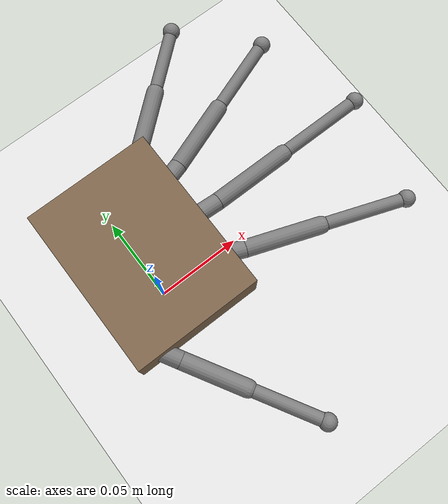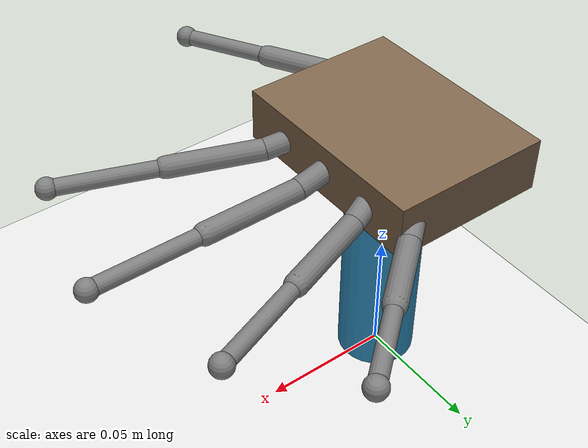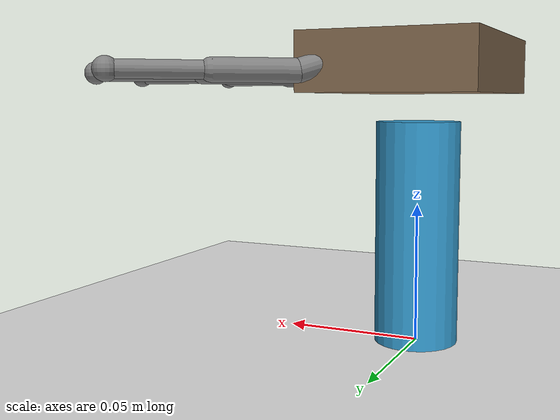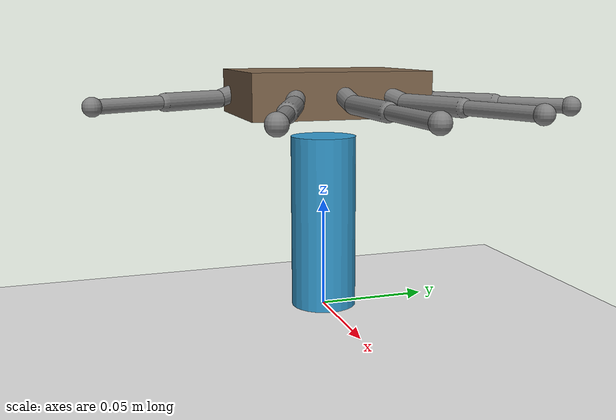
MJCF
<mujoco model="spider_hand_powergrasp_v2">
  <compiler angle="degree"/>
  <option timestep="0.002" gravity="0 0 -9.81" integrator="RK4"/>
  <default>
    <joint damping="1.0" armature="0.05"/>
    <geom friction="1.2 0.005 0.0001" condim="3"/>
  </default>
  <worldbody>
    <light diffuse="0.5 0.5 0.5" pos="0 0 3" dir="0 0 -1"/>
    <geom name="floor" type="plane" size="1 1 0.1" rgba="0.9 0.9 0.9 1"/>

    <body name="cylinder" pos="0 0 0.04">
      <freejoint name="cylinder_root"/>
      <geom name="cylinder_geom" type="cylinder" size="0.015 0.04" mass="0.5" rgba="0.2 0.6 0.8 1"/>
    </body>

    <body name="palm" pos="0 0 0.10">
      <geom name="palm_geom" type="box" size="0.03 0.04 0.01" rgba="0.5 0.4 0.3 1"/>

      <body name="thumb" pos="-0.02 -0.035 0" euler="0 0 -60">
        <joint name="thumb_coxa" type="hinge" axis="0 0 1" range="-30 30"/>
        <geom type="capsule" size="0.004" fromto="0 0 0 0.012 0 -0.003"/>
        <body name="thumb_femur" pos="0.012 0 -0.003">
          <joint name="thumb_femur" type="hinge" axis="0 1 0" range="0 120"/>
          <geom type="capsule" size="0.004" fromto="0 0 0 0.03 0 0"/>
          <body name="thumb_tibia" pos="0.03 0 0">
            <joint name="thumb_tibia" type="hinge" axis="0 1 0" range="0 150"/>
            <geom type="capsule" size="0.003" fromto="0 0 0 0.035 0 0"/>
            <site name="thumb_tip" pos="0.035 0 0" size="0.004" type="sphere"/>
          </body>
        </body>
      </body>

      <body name="index" pos="0.025 -0.02 0" euler="0 0 -20">
        <joint name="index_coxa" type="hinge" axis="0 0 1" range="-30 30"/>
        <geom type="capsule" size="0.004" fromto="0 0 0 0.012 0 -0.003"/>
        <body name="index_femur" pos="0.012 0 -0.003">
          <joint name="index_femur" type="hinge" axis="0 1 0" range="0 120"/>
          <geom type="capsule" size="0.004" fromto="0 0 0 0.035 0 0"/>
          <body name="index_tibia" pos="0.035 0 0">
            <joint name="index_tibia" type="hinge" axis="0 1 0" range="0 150"/>
            <geom type="capsule" size="0.003" fromto="0 0 0 0.04 0 0"/>
            <site name="index_tip" pos="0.04 0 0" size="0.004" type="sphere"/>
          </body>
        </body>
      </body>

      <body name="middle" pos="0.028 0 0" euler="0 0 0">
        <joint name="middle_coxa" type="hinge" axis="0 0 1" range="-30 30"/>
        <geom type="capsule" size="0.004" fromto="0 0 0 0.012 0 -0.003"/>
        <body name="middle_femur" pos="0.012 0 -0.003">
          <joint name="middle_femur" type="hinge" axis="0 1 0" range="0 120"/>
          <geom type="capsule" size="0.004" fromto="0 0 0 0.037 0 0"/>
          <body name="middle_tibia" pos="0.037 0 0">
            <joint name="middle_tibia" type="hinge" axis="0 1 0" range="0 150"/>
            <geom type="capsule" size="0.003" fromto="0 0 0 0.042 0 0"/>
            <site name="middle_tip" pos="0.042 0 0" size="0.004" type="sphere"/>
          </body>
        </body>
      </body>

      <body name="ring" pos="0.025 0.02 0" euler="0 0 20">
        <joint name="ring_coxa" type="hinge" axis="0 0 1" range="-30 30"/>
        <geom type="capsule" size="0.004" fromto="0 0 0 0.012 0 -0.003"/>
        <body name="ring_femur" pos="0.012 0 -0.003">
          <joint name="ring_femur" type="hinge" axis="0 1 0" range="0 120"/>
          <geom type="capsule" size="0.004" fromto="0 0 0 0.033 0 0"/>
          <body name="ring_tibia" pos="0.033 0 0">
            <joint name="ring_tibia" type="hinge" axis="0 1 0" range="0 150"/>
            <geom type="capsule" size="0.003" fromto="0 0 0 0.038 0 0"/>
            <site name="ring_tip" pos="0.038 0 0" size="0.004" type="sphere"/>
          </body>
        </body>
      </body>

      <body name="pinky" pos="0.02 0.035 0" euler="0 0 40">
        <joint name="pinky_coxa" type="hinge" axis="0 0 1" range="-30 30"/>
        <geom type="capsule" size="0.004" fromto="0 0 0 0.01 0 -0.003"/>
        <body name="pinky_femur" pos="0.01 0 -0.003">
          <joint name="pinky_femur" type="hinge" axis="0 1 0" range="0 120"/>
          <geom type="capsule" size="0.004" fromto="0 0 0 0.028 0 0"/>
          <body name="pinky_tibia" pos="0.028 0 0">
            <joint name="pinky_tibia" type="hinge" axis="0 1 0" range="0 150"/>
            <geom type="capsule" size="0.003" fromto="0 0 0 0.032 0 0"/>
            <site name="pinky_tip" pos="0.032 0 0" size="0.004" type="sphere"/>
          </body>
        </body>
      </body>
    </body>
  </worldbody>
  <actuator>
    <position name="thumb_coxa_act" joint="thumb_coxa" kp="30" kv="3"/>
    <position name="thumb_femur_act" joint="thumb_femur" kp="50" kv="5"/>
    <position name="thumb_tibia_act" joint="thumb_tibia" kp="80" kv="8"/>
    <position name="index_coxa_act" joint="index_coxa" kp="30" kv="3"/>
    <position name="index_femur_act" joint="index_femur" kp="50" kv="5"/>
    <position name="index_tibia_act" joint="index_tibia" kp="80" kv="8"/>
    <position name="middle_coxa_act" joint="middle_coxa" kp="30" kv="3"/>
    <position name="middle_femur_act" joint="middle_femur" kp="50" kv="5"/>
    <position name="middle_tibia_act" joint="middle_tibia" kp="80" kv="8"/>
    <position name="ring_coxa_act" joint="ring_coxa" kp="30" kv="3"/>
    <position name="ring_femur_act" joint="ring_femur" kp="50" kv="5"/>
    <position name="ring_tibia_act" joint="ring_tibia" kp="80" kv="8"/>
    <position name="pinky_coxa_act" joint="pinky_coxa" kp="30" kv="3"/>
    <position name="pinky_femur_act" joint="pinky_femur" kp="50" kv="5"/>
    <position name="pinky_tibia_act" joint="pinky_tibia" kp="80" kv="8"/>
  </actuator>
  <sensor>
    <touch name="thumb_touch" site="thumb_tip"/>
    <touch name="index_touch" site="index_tip"/>
    <touch name="middle_touch" site="middle_tip"/>
    <touch name="ring_touch" site="ring_tip"/>
    <touch name="pinky_touch" site="pinky_tip"/>
  </sensor>
</mujoco>
